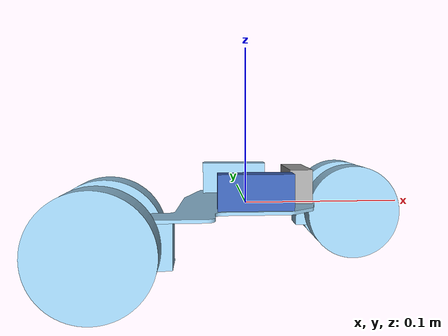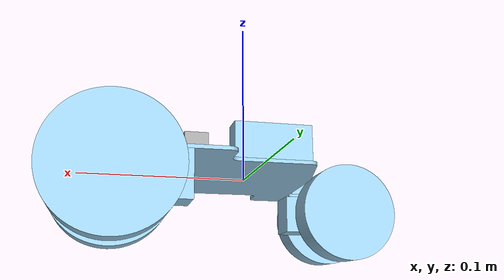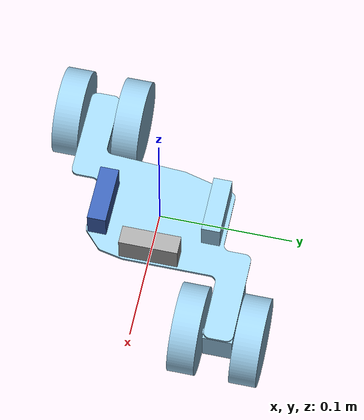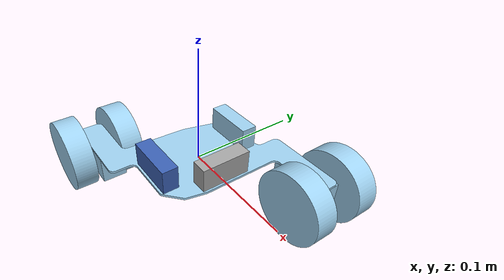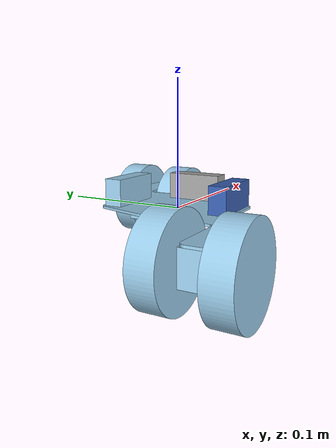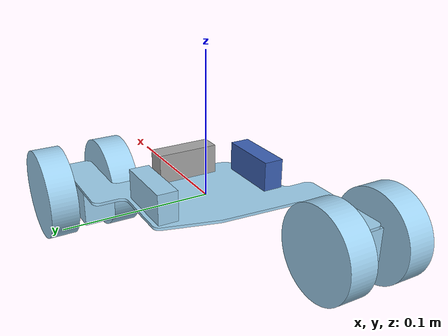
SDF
<?xml version="1.0" ?>
<!-- Generated using onshape-to-robot -->
<!-- Onshape https://cad.onshape.com/documents/d578f2fbdc332270e30f24e5/w/ba84a5b38e318fd89e8c140d/e/9356b596fb5246da0639ba81 -->
<sdf version="1.7">
  <model name="d:\USC\Proyectos\LaberintIA\LaberintIA_FrameWork\model">
    <!-- Link base -->
    <link name="base">
      <inertial>
        <pose>0.00307768 0.000105962 -0.000964714 0 0 0</pose>
        <mass>0.12856</mass>
        <inertia>
          <ixx>0.000346572</ixx>
          <ixy>-0.000262893</ixy>
          <ixz>-6.67677e-06</ixz>
          <iyy>0.000350062</iyy>
          <iyz>2.86089e-07</iyz>
          <izz>0.000655475</izz>
        </inertia>
      </inertial>
      <pose>0 0 0 0 -0 0</pose>
      <!-- Part hc_l -->
      <visual name="hc_l_visual_mesh_1">
        <pose relative_to="base">0.00253847 -0.00166622 0.002 -0 -0 -1.5708</pose>
        <geometry>
          <mesh>
            <uri>model://d:\USC\Proyectos\LaberintIA\LaberintIA_FrameWork\model/assets\hc_l.stl</uri>
          </mesh>
        </geometry>
        <material>
          <ambient>0.231373 0.380392 0.705882 1</ambient>
          <diffuse>0.231373 0.380392 0.705882 1</diffuse>
          <specular>0.1 0.1 0.1 1</specular>
          <emissive>0 0 0 0</emissive>
        </material>
      </visual>
      <collision name="hc_l_collision_mesh_2">
        <pose relative_to="base">0.00253847 -0.00166622 0.002 -0 -0 -1.5708</pose>
        <geometry>
          <mesh>
            <uri>model://d:\USC\Proyectos\LaberintIA\LaberintIA_FrameWork\model/assets\hc_l.stl</uri>
          </mesh>
        </geometry>
      </collision>
      <!-- Part part_1 -->
      <visual name="part_1_visual_mesh_1">
        <pose relative_to="base">-0.0618028 -0.0632851 0 3.14159 -0 -3.14159</pose>
        <geometry>
          <mesh>
            <uri>model://d:\USC\Proyectos\LaberintIA\LaberintIA_FrameWork\model/assets\part_1.stl</uri>
          </mesh>
        </geometry>
        <material>
          <ambient>0.615686 0.811765 0.929412 1</ambient>
          <diffuse>0.615686 0.811765 0.929412 1</diffuse>
          <specular>0.1 0.1 0.1 1</specular>
          <emissive>0 0 0 0</emissive>
        </material>
      </visual>
      <collision name="part_1_collision_mesh_2">
        <pose relative_to="base">-0.0618028 -0.0632851 0 3.14159 -0 -3.14159</pose>
        <geometry>
          <mesh>
            <uri>model://d:\USC\Proyectos\LaberintIA\LaberintIA_FrameWork\model/assets\part_1.stl</uri>
          </mesh>
        </geometry>
      </collision>
      <!-- Part part_1_2 -->
      <visual name="part_1_2_visual_mesh_1">
        <pose relative_to="base">0.0599143 0.0615782 -0.025 0 -0 0</pose>
        <geometry>
          <mesh>
            <uri>model://d:\USC\Proyectos\LaberintIA\LaberintIA_FrameWork\model/assets\part_1.stl</uri>
          </mesh>
        </geometry>
        <material>
          <ambient>0.615686 0.811765 0.929412 1</ambient>
          <diffuse>0.615686 0.811765 0.929412 1</diffuse>
          <specular>0.1 0.1 0.1 1</specular>
          <emissive>0 0 0 0</emissive>
        </material>
      </visual>
      <collision name="part_1_2_collision_mesh_2">
        <pose relative_to="base">0.0599143 0.0615782 -0.025 0 -0 0</pose>
        <geometry>
          <mesh>
            <uri>model://d:\USC\Proyectos\LaberintIA\LaberintIA_FrameWork\model/assets\part_1.stl</uri>
          </mesh>
        </geometry>
      </collision>
      <!-- Part hc_r -->
      <visual name="hc_r_visual_mesh_1">
        <pose relative_to="base">-0.00300651 0.000393705 0.002 -0 -0 -1.5708</pose>
        <geometry>
          <mesh>
            <uri>model://d:\USC\Proyectos\LaberintIA\LaberintIA_FrameWork\model/assets\hc_r.stl</uri>
          </mesh>
        </geometry>
        <material>
          <ambient>0.615686 0.811765 0.929412 1</ambient>
          <diffuse>0.615686 0.811765 0.929412 1</diffuse>
          <specular>0.1 0.1 0.1 1</specular>
          <emissive>0 0 0 0</emissive>
        </material>
      </visual>
      <collision name="hc_r_collision_mesh_2">
        <pose relative_to="base">-0.00300651 0.000393705 0.002 -0 -0 -1.5708</pose>
        <geometry>
          <mesh>
            <uri>model://d:\USC\Proyectos\LaberintIA\LaberintIA_FrameWork\model/assets\hc_r.stl</uri>
          </mesh>
        </geometry>
      </collision>
      <!-- Part base -->
      <visual name="base_visual_mesh_1">
        <pose relative_to="base">-0.00101206 4.58262e-05 0 -0 -0 -1.5708</pose>
        <geometry>
          <mesh>
            <uri>model://d:\USC\Proyectos\LaberintIA\LaberintIA_FrameWork\model/assets\base.stl</uri>
          </mesh>
        </geometry>
        <material>
          <ambient>0.615686 0.811765 0.929412 1</ambient>
          <diffuse>0.615686 0.811765 0.929412 1</diffuse>
          <specular>0.1 0.1 0.1 1</specular>
          <emissive>0 0 0 0</emissive>
        </material>
      </visual>
      <collision name="base_collision_mesh_2">
        <pose relative_to="base">-0.00101206 4.58262e-05 0 -0 -0 -1.5708</pose>
        <geometry>
          <mesh>
            <uri>model://d:\USC\Proyectos\LaberintIA\LaberintIA_FrameWork\model/assets\base.stl</uri>
          </mesh>
        </geometry>
      </collision>
      <!-- Part hc_c -->
      <visual name="hc_c_visual_mesh_1">
        <pose relative_to="base">-0.000267862 0.00117953 0.002 -0 -0 -1.5708</pose>
        <geometry>
          <mesh>
            <uri>model://d:\USC\Proyectos\LaberintIA\LaberintIA_FrameWork\model/assets\hc_c.stl</uri>
          </mesh>
        </geometry>
        <material>
          <ambient>0.647059 0.647059 0.647059 1</ambient>
          <diffuse>0.647059 0.647059 0.647059 1</diffuse>
          <specular>0.1 0.1 0.1 1</specular>
          <emissive>0 0 0 0</emissive>
        </material>
      </visual>
      <collision name="hc_c_collision_mesh_2">
        <pose relative_to="base">-0.000267862 0.00117953 0.002 -0 -0 -1.5708</pose>
        <geometry>
          <mesh>
            <uri>model://d:\USC\Proyectos\LaberintIA\LaberintIA_FrameWork\model/assets\hc_c.stl</uri>
          </mesh>
        </geometry>
      </collision>
    </link>
    <!-- Link part_1 -->
    <link name="part_1">
      <inertial>
        <pose>-0.0822062 -0.0621031 -0.0125 0 0 0</pose>
        <mass>0.144488</mass>
        <inertia>
          <ixx>0.000120082</ixx>
          <ixy>0</ixy>
          <ixz>0</ixz>
          <iyy>7.83899e-05</iyy>
          <iyz>0</iyz>
          <izz>0.000120082</izz>
        </inertia>
      </inertial>
      <pose>0 0 0 0 -0 0</pose>
      <!-- Part part_1_3 -->
      <visual name="part_1_3_visual_mesh_1">
        <pose relative_to="part_1">-0.086448 -0.0750883 -0.0125 0 -0 0</pose>
        <geometry>
          <mesh>
            <uri>model://d:\USC\Proyectos\LaberintIA\LaberintIA_FrameWork\model/assets\part_1__2.stl</uri>
          </mesh>
        </geometry>
        <material>
          <ambient>0.615686 0.811765 0.929412 1</ambient>
          <diffuse>0.615686 0.811765 0.929412 1</diffuse>
          <specular>0.1 0.1 0.1 1</specular>
          <emissive>0 0 0 0</emissive>
        </material>
      </visual>
      <collision name="part_1_3_collision_mesh_2">
        <pose relative_to="part_1">-0.086448 -0.0750883 -0.0125 0 -0 0</pose>
        <geometry>
          <mesh>
            <uri>model://d:\USC\Proyectos\LaberintIA\LaberintIA_FrameWork\model/assets\part_1__2.stl</uri>
          </mesh>
        </geometry>
      </collision>
    </link>
    <!-- Link part_1_2 -->
    <link name="part_1_2">
      <inertial>
        <pose>0.0803177 0.0627602 -0.0125 0 0 0</pose>
        <mass>0.144488</mass>
        <inertia>
          <ixx>0.000120082</ixx>
          <ixy>0</ixy>
          <ixz>0</ixz>
          <iyy>7.83899e-05</iyy>
          <iyz>0</iyz>
          <izz>0.000120082</izz>
        </inertia>
      </inertial>
      <pose>0 0 0 0 -0 0</pose>
      <!-- Part part_1_4 -->
      <visual name="part_1_4_visual_mesh_1">
        <pose relative_to="part_1_2">0.0760758 0.049775 -0.0125 0 -0 0</pose>
        <geometry>
          <mesh>
            <uri>model://d:\USC\Proyectos\LaberintIA\LaberintIA_FrameWork\model/assets\part_1__2.stl</uri>
          </mesh>
        </geometry>
        <material>
          <ambient>0.615686 0.811765 0.929412 1</ambient>
          <diffuse>0.615686 0.811765 0.929412 1</diffuse>
          <specular>0.1 0.1 0.1 1</specular>
          <emissive>0 0 0 0</emissive>
        </material>
      </visual>
      <collision name="part_1_4_collision_mesh_2">
        <pose relative_to="part_1_2">0.0760758 0.049775 -0.0125 0 -0 0</pose>
        <geometry>
          <mesh>
            <uri>model://d:\USC\Proyectos\LaberintIA\LaberintIA_FrameWork\model/assets\part_1__2.stl</uri>
          </mesh>
        </geometry>
      </collision>
    </link>
  </model>
</sdf>
